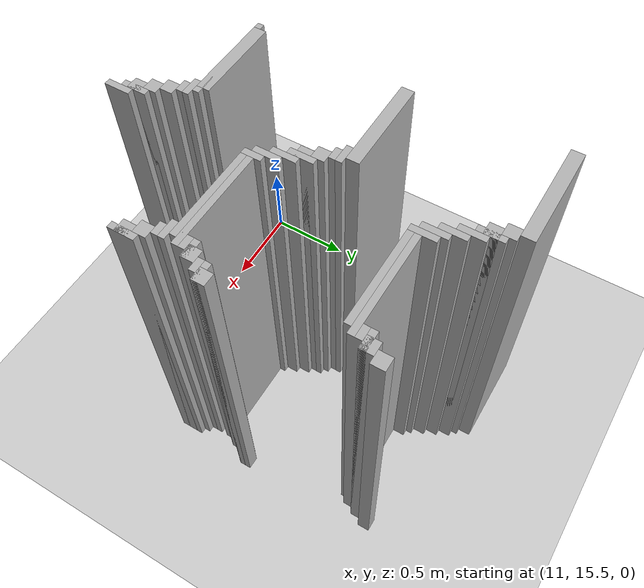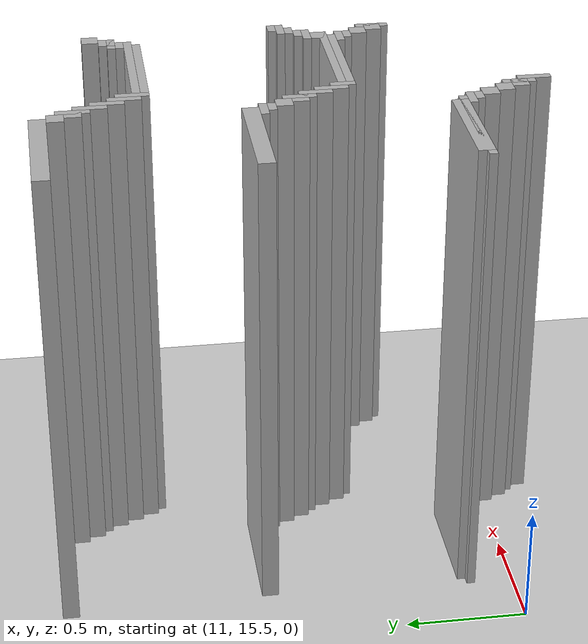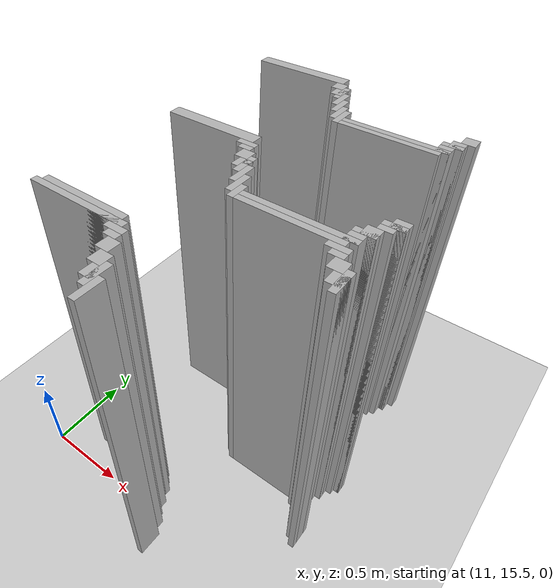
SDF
<sdf version="1.6">
 <world name="slam_world">
  <model name="ground_plane">
   <static>true</static>
   <link name="link">
    <collision name="collision">
     <geometry><plane><normal>0 0 1</normal><size>100 100</size></plane></geometry>
    </collision>
    <visual name="visual">
     <geometry><plane><normal>0 0 1</normal><size>100 100</size></plane></geometry>
     <material>
      <ambient>0.8 0.8 0.8 1</ambient>
      <diffuse>0.8 0.8 0.8 1</diffuse>
      <specular>0.8 0.8 0.8 1</specular>
     </material>
    </visual>
   </link>
  </model>
  <model name="wall_8">
   <static>true</static>
   <pose>11.519721577726218 17.366589327146173 1.0 0 0 0</pose>
   <link name="link">
    <collision name="collision">
     <geometry><box><size>0.5568445475638051 0.06960556844547564 2.0</size></box></geometry>
    </collision>
    <visual name="visual">
     <geometry><box><size>0.5568445475638051 0.06960556844547564 2.0</size></box></geometry>
     <material><ambient>0.5 0.5 0.5 1</ambient><diffuse>0.7 0.7 0.7 1</diffuse></material>
    </visual>
   </link>
  </model>
  <model name="wall_26">
   <static>true</static>
   <pose>11.79814385150812 17.296983758700694 1.0 0 0 0</pose>
   <link name="link">
    <collision name="collision">
     <geometry><box><size>0.06960556844547564 0.06960556844547564 2.0</size></box></geometry>
    </collision>
    <visual name="visual">
     <geometry><box><size>0.06960556844547564 0.06960556844547564 2.0</size></box></geometry>
     <material><ambient>0.5 0.5 0.5 1</ambient><diffuse>0.7 0.7 0.7 1</diffuse></material>
    </visual>
   </link>
  </model>
  <model name="wall_46">
   <static>true</static>
   <pose>11.850348027842227 17.22737819025522 1.0 0 0 0</pose>
   <link name="link">
    <collision name="collision">
     <geometry><box><size>0.03480278422273782 0.13921113689095127 2.0</size></box></geometry>
    </collision>
    <visual name="visual">
     <geometry><box><size>0.03480278422273782 0.13921113689095127 2.0</size></box></geometry>
     <material><ambient>0.5 0.5 0.5 1</ambient><diffuse>0.7 0.7 0.7 1</diffuse></material>
    </visual>
   </link>
  </model>
  <model name="wall_66">
   <static>true</static>
   <pose>11.832946635730858 17.22737819025522 1.0 0 0 0</pose>
   <link name="link">
    <collision name="collision">
     <geometry><box><size>0.06960556844547564 0.06960556844547564 2.0</size></box></geometry>
    </collision>
    <visual name="visual">
     <geometry><box><size>0.06960556844547564 0.06960556844547564 2.0</size></box></geometry>
     <material><ambient>0.5 0.5 0.5 1</ambient><diffuse>0.7 0.7 0.7 1</diffuse></material>
    </visual>
   </link>
  </model>
  <model name="wall_86">
   <static>true</static>
   <pose>11.885150812064964 17.157772621809745 1.0 0 0 0</pose>
   <link name="link">
    <collision name="collision">
     <geometry><box><size>0.03480278422273782 0.13921113689095127 2.0</size></box></geometry>
    </collision>
    <visual name="visual">
     <geometry><box><size>0.03480278422273782 0.13921113689095127 2.0</size></box></geometry>
     <material><ambient>0.5 0.5 0.5 1</ambient><diffuse>0.7 0.7 0.7 1</diffuse></material>
    </visual>
   </link>
  </model>
  <model name="wall_116">
   <static>true</static>
   <pose>11.919953596287703 17.08816705336427 1.0 0 0 0</pose>
   <link name="link">
    <collision name="collision">
     <geometry><box><size>0.03480278422273782 0.13921113689095127 2.0</size></box></geometry>
    </collision>
    <visual name="visual">
     <geometry><box><size>0.03480278422273782 0.13921113689095127 2.0</size></box></geometry>
     <material><ambient>0.5 0.5 0.5 1</ambient><diffuse>0.7 0.7 0.7 1</diffuse></material>
    </visual>
   </link>
  </model>
  <model name="wall_117">
   <static>true</static>
   <pose>12.59860788863109 17.122969837587007 1.0 0 0 0</pose>
   <link name="link">
    <collision name="collision">
     <geometry><box><size>0.06960556844547564 0.06960556844547564 2.0</size></box></geometry>
    </collision>
    <visual name="visual">
     <geometry><box><size>0.06960556844547564 0.06960556844547564 2.0</size></box></geometry>
     <material><ambient>0.5 0.5 0.5 1</ambient><diffuse>0.7 0.7 0.7 1</diffuse></material>
    </visual>
   </link>
  </model>
  <model name="wall_136">
   <static>true</static>
   <pose>11.95475638051044 17.01856148491879 1.0 0 0 0</pose>
   <link name="link">
    <collision name="collision">
     <geometry><box><size>0.03480278422273782 0.13921113689095127 2.0</size></box></geometry>
    </collision>
    <visual name="visual">
     <geometry><box><size>0.03480278422273782 0.13921113689095127 2.0</size></box></geometry>
     <material><ambient>0.5 0.5 0.5 1</ambient><diffuse>0.7 0.7 0.7 1</diffuse></material>
    </visual>
   </link>
  </model>
  <model name="wall_137">
   <static>true</static>
   <pose>12.563805104408353 17.053364269141532 1.0 0 0 0</pose>
   <link name="link">
    <collision name="collision">
     <geometry><box><size>0.06960556844547564 0.06960556844547564 2.0</size></box></geometry>
    </collision>
    <visual name="visual">
     <geometry><box><size>0.06960556844547564 0.06960556844547564 2.0</size></box></geometry>
     <material><ambient>0.5 0.5 0.5 1</ambient><diffuse>0.7 0.7 0.7 1</diffuse></material>
    </visual>
   </link>
  </model>
  <model name="wall_156">
   <static>true</static>
   <pose>11.989559164733178 16.983758700696054 1.0 0 0 0</pose>
   <link name="link">
    <collision name="collision">
     <geometry><box><size>0.03480278422273782 0.13921113689095127 2.0</size></box></geometry>
    </collision>
    <visual name="visual">
     <geometry><box><size>0.03480278422273782 0.13921113689095127 2.0</size></box></geometry>
     <material><ambient>0.5 0.5 0.5 1</ambient><diffuse>0.7 0.7 0.7 1</diffuse></material>
    </visual>
   </link>
  </model>
  <model name="wall_157">
   <static>true</static>
   <pose>12.546403712296984 17.035962877030162 1.0 0 0 0</pose>
   <link name="link">
    <collision name="collision">
     <geometry><box><size>0.10440835266821345 0.03480278422273782 2.0</size></box></geometry>
    </collision>
    <visual name="visual">
     <geometry><box><size>0.10440835266821345 0.03480278422273782 2.0</size></box></geometry>
     <material><ambient>0.5 0.5 0.5 1</ambient><diffuse>0.7 0.7 0.7 1</diffuse></material>
    </visual>
   </link>
  </model>
  <model name="wall_169">
   <static>true</static>
   <pose>12.529002320185615 16.983758700696054 1.0 0 0 0</pose>
   <link name="link">
    <collision name="collision">
     <geometry><box><size>0.06960556844547564 0.06960556844547564 2.0</size></box></geometry>
    </collision>
    <visual name="visual">
     <geometry><box><size>0.06960556844547564 0.06960556844547564 2.0</size></box></geometry>
     <material><ambient>0.5 0.5 0.5 1</ambient><diffuse>0.7 0.7 0.7 1</diffuse></material>
    </visual>
   </link>
  </model>
  <model name="wall_179">
   <static>true</static>
   <pose>12.28538283062645 16.966357308584687 1.0 0 0 0</pose>
   <link name="link">
    <collision name="collision">
     <geometry><box><size>0.5568445475638051 0.03480278422273782 2.0</size></box></geometry>
    </collision>
    <visual name="visual">
     <geometry><box><size>0.5568445475638051 0.03480278422273782 2.0</size></box></geometry>
     <material><ambient>0.5 0.5 0.5 1</ambient><diffuse>0.7 0.7 0.7 1</diffuse></material>
    </visual>
   </link>
  </model>
  <model name="wall_190">
   <static>true</static>
   <pose>12.267981438515081 16.93155452436195 1.0 0 0 0</pose>
   <link name="link">
    <collision name="collision">
     <geometry><box><size>0.5220417633410672 0.03480278422273782 2.0</size></box></geometry>
    </collision>
    <visual name="visual">
     <geometry><box><size>0.5220417633410672 0.03480278422273782 2.0</size></box></geometry>
     <material><ambient>0.5 0.5 0.5 1</ambient><diffuse>0.7 0.7 0.7 1</diffuse></material>
    </visual>
   </link>
  </model>
  <model name="wall_272">
   <static>true</static>
   <pose>11.537122969837586 16.531322505800464 1.0 0 0 0</pose>
   <link name="link">
    <collision name="collision">
     <geometry><box><size>0.5220417633410672 0.06960556844547564 2.0</size></box></geometry>
    </collision>
    <visual name="visual">
     <geometry><box><size>0.5220417633410672 0.06960556844547564 2.0</size></box></geometry>
     <material><ambient>0.5 0.5 0.5 1</ambient><diffuse>0.7 0.7 0.7 1</diffuse></material>
    </visual>
   </link>
  </model>
  <model name="wall_290">
   <static>true</static>
   <pose>11.780742459396752 16.479118329466356 1.0 0 0 0</pose>
   <link name="link">
    <collision name="collision">
     <geometry><box><size>0.10440835266821345 0.03480278422273782 2.0</size></box></geometry>
    </collision>
    <visual name="visual">
     <geometry><box><size>0.10440835266821345 0.03480278422273782 2.0</size></box></geometry>
     <material><ambient>0.5 0.5 0.5 1</ambient><diffuse>0.7 0.7 0.7 1</diffuse></material>
    </visual>
   </link>
  </model>
  <model name="wall_301">
   <static>true</static>
   <pose>11.79814385150812 16.44431554524362 1.0 0 0 0</pose>
   <link name="link">
    <collision name="collision">
     <geometry><box><size>0.06960556844547564 0.03480278422273782 2.0</size></box></geometry>
    </collision>
    <visual name="visual">
     <geometry><box><size>0.06960556844547564 0.03480278422273782 2.0</size></box></geometry>
     <material><ambient>0.5 0.5 0.5 1</ambient><diffuse>0.7 0.7 0.7 1</diffuse></material>
    </visual>
   </link>
  </model>
  <model name="wall_313">
   <static>true</static>
   <pose>11.832946635730858 16.39211136890951 1.0 0 0 0</pose>
   <link name="link">
    <collision name="collision">
     <geometry><box><size>0.06960556844547564 0.06960556844547564 2.0</size></box></geometry>
    </collision>
    <visual name="visual">
     <geometry><box><size>0.06960556844547564 0.06960556844547564 2.0</size></box></geometry>
     <material><ambient>0.5 0.5 0.5 1</ambient><diffuse>0.7 0.7 0.7 1</diffuse></material>
    </visual>
   </link>
  </model>
  <model name="wall_327">
   <static>true</static>
   <pose>11.885150812064964 16.322505800464036 1.0 0 0 0</pose>
   <link name="link">
    <collision name="collision">
     <geometry><box><size>0.03480278422273782 0.13921113689095127 2.0</size></box></geometry>
    </collision>
    <visual name="visual">
     <geometry><box><size>0.03480278422273782 0.13921113689095127 2.0</size></box></geometry>
     <material><ambient>0.5 0.5 0.5 1</ambient><diffuse>0.7 0.7 0.7 1</diffuse></material>
    </visual>
   </link>
  </model>
  <model name="wall_341">
   <static>true</static>
   <pose>11.867749419953595 16.322505800464036 1.0 0 0 0</pose>
   <link name="link">
    <collision name="collision">
     <geometry><box><size>0.06960556844547564 0.06960556844547564 2.0</size></box></geometry>
    </collision>
    <visual name="visual">
     <geometry><box><size>0.06960556844547564 0.06960556844547564 2.0</size></box></geometry>
     <material><ambient>0.5 0.5 0.5 1</ambient><diffuse>0.7 0.7 0.7 1</diffuse></material>
    </visual>
   </link>
  </model>
  <model name="wall_342">
   <static>true</static>
   <pose>12.633410672853827 16.322505800464036 1.0 0 0 0</pose>
   <link name="link">
    <collision name="collision">
     <geometry><box><size>0.06960556844547564 0.06960556844547564 2.0</size></box></geometry>
    </collision>
    <visual name="visual">
     <geometry><box><size>0.06960556844547564 0.06960556844547564 2.0</size></box></geometry>
     <material><ambient>0.5 0.5 0.5 1</ambient><diffuse>0.7 0.7 0.7 1</diffuse></material>
    </visual>
   </link>
  </model>
  <model name="wall_355">
   <static>true</static>
   <pose>11.919953596287703 16.25290023201856 1.0 0 0 0</pose>
   <link name="link">
    <collision name="collision">
     <geometry><box><size>0.03480278422273782 0.13921113689095127 2.0</size></box></geometry>
    </collision>
    <visual name="visual">
     <geometry><box><size>0.03480278422273782 0.13921113689095127 2.0</size></box></geometry>
     <material><ambient>0.5 0.5 0.5 1</ambient><diffuse>0.7 0.7 0.7 1</diffuse></material>
    </visual>
   </link>
  </model>
  <model name="wall_356">
   <static>true</static>
   <pose>12.616009280742459 16.30510440835267 1.0 0 0 0</pose>
   <link name="link">
    <collision name="collision">
     <geometry><box><size>0.10440835266821345 0.03480278422273782 2.0</size></box></geometry>
    </collision>
    <visual name="visual">
     <geometry><box><size>0.10440835266821345 0.03480278422273782 2.0</size></box></geometry>
     <material><ambient>0.5 0.5 0.5 1</ambient><diffuse>0.7 0.7 0.7 1</diffuse></material>
    </visual>
   </link>
  </model>
  <model name="wall_365">
   <static>true</static>
   <pose>12.59860788863109 16.270301624129928 1.0 0 0 0</pose>
   <link name="link">
    <collision name="collision">
     <geometry><box><size>0.06960556844547564 0.03480278422273782 2.0</size></box></geometry>
    </collision>
    <visual name="visual">
     <geometry><box><size>0.06960556844547564 0.03480278422273782 2.0</size></box></geometry>
     <material><ambient>0.5 0.5 0.5 1</ambient><diffuse>0.7 0.7 0.7 1</diffuse></material>
    </visual>
   </link>
  </model>
  <model name="wall_377">
   <static>true</static>
   <pose>11.95475638051044 16.183294663573086 1.0 0 0 0</pose>
   <link name="link">
    <collision name="collision">
     <geometry><box><size>0.03480278422273782 0.13921113689095127 2.0</size></box></geometry>
    </collision>
    <visual name="visual">
     <geometry><box><size>0.03480278422273782 0.13921113689095127 2.0</size></box></geometry>
     <material><ambient>0.5 0.5 0.5 1</ambient><diffuse>0.7 0.7 0.7 1</diffuse></material>
    </visual>
   </link>
  </model>
  <model name="wall_378">
   <static>true</static>
   <pose>12.563805104408353 16.218097447795824 1.0 0 0 0</pose>
   <link name="link">
    <collision name="collision">
     <geometry><box><size>0.06960556844547564 0.06960556844547564 2.0</size></box></geometry>
    </collision>
    <visual name="visual">
     <geometry><box><size>0.06960556844547564 0.06960556844547564 2.0</size></box></geometry>
     <material><ambient>0.5 0.5 0.5 1</ambient><diffuse>0.7 0.7 0.7 1</diffuse></material>
    </visual>
   </link>
  </model>
  <model name="wall_387">
   <static>true</static>
   <pose>12.546403712296984 16.200696055684453 1.0 0 0 0</pose>
   <link name="link">
    <collision name="collision">
     <geometry><box><size>0.10440835266821345 0.03480278422273782 2.0</size></box></geometry>
    </collision>
    <visual name="visual">
     <geometry><box><size>0.10440835266821345 0.03480278422273782 2.0</size></box></geometry>
     <material><ambient>0.5 0.5 0.5 1</ambient><diffuse>0.7 0.7 0.7 1</diffuse></material>
    </visual>
   </link>
  </model>
  <model name="wall_399">
   <static>true</static>
   <pose>11.989559164733178 16.13109048723898 1.0 0 0 0</pose>
   <link name="link">
    <collision name="collision">
     <geometry><box><size>0.03480278422273782 0.10440835266821345 2.0</size></box></geometry>
    </collision>
    <visual name="visual">
     <geometry><box><size>0.03480278422273782 0.10440835266821345 2.0</size></box></geometry>
     <material><ambient>0.5 0.5 0.5 1</ambient><diffuse>0.7 0.7 0.7 1</diffuse></material>
    </visual>
   </link>
  </model>
  <model name="wall_400">
   <static>true</static>
   <pose>12.529002320185615 16.14849187935035 1.0 0 0 0</pose>
   <link name="link">
    <collision name="collision">
     <geometry><box><size>0.06960556844547564 0.06960556844547564 2.0</size></box></geometry>
    </collision>
    <visual name="visual">
     <geometry><box><size>0.06960556844547564 0.06960556844547564 2.0</size></box></geometry>
     <material><ambient>0.5 0.5 0.5 1</ambient><diffuse>0.7 0.7 0.7 1</diffuse></material>
    </visual>
   </link>
  </model>
  <model name="wall_413">
   <static>true</static>
   <pose>12.28538283062645 16.13109048723898 1.0 0 0 0</pose>
   <link name="link">
    <collision name="collision">
     <geometry><box><size>0.5568445475638051 0.03480278422273782 2.0</size></box></geometry>
    </collision>
    <visual name="visual">
     <geometry><box><size>0.5568445475638051 0.03480278422273782 2.0</size></box></geometry>
     <material><ambient>0.5 0.5 0.5 1</ambient><diffuse>0.7 0.7 0.7 1</diffuse></material>
    </visual>
   </link>
  </model>
  <model name="wall_425">
   <static>true</static>
   <pose>12.267981438515081 16.09628770301624 1.0 0 0 0</pose>
   <link name="link">
    <collision name="collision">
     <geometry><box><size>0.5220417633410672 0.03480278422273782 2.0</size></box></geometry>
    </collision>
    <visual name="visual">
     <geometry><box><size>0.5220417633410672 0.03480278422273782 2.0</size></box></geometry>
     <material><ambient>0.5 0.5 0.5 1</ambient><diffuse>0.7 0.7 0.7 1</diffuse></material>
    </visual>
   </link>
  </model>
  <model name="wall_438">
   <static>true</static>
   <pose>12.511600928074245 16.061484918793504 1.0 0 0 0</pose>
   <link name="link">
    <collision name="collision">
     <geometry><box><size>0.10440835266821345 0.03480278422273782 2.0</size></box></geometry>
    </collision>
    <visual name="visual">
     <geometry><box><size>0.10440835266821345 0.03480278422273782 2.0</size></box></geometry>
     <material><ambient>0.5 0.5 0.5 1</ambient><diffuse>0.7 0.7 0.7 1</diffuse></material>
    </visual>
   </link>
  </model>
  <model name="wall_452">
   <static>true</static>
   <pose>12.529002320185615 16.026682134570766 1.0 0 0 0</pose>
   <link name="link">
    <collision name="collision">
     <geometry><box><size>0.06960556844547564 0.03480278422273782 2.0</size></box></geometry>
    </collision>
    <visual name="visual">
     <geometry><box><size>0.06960556844547564 0.03480278422273782 2.0</size></box></geometry>
     <material><ambient>0.5 0.5 0.5 1</ambient><diffuse>0.7 0.7 0.7 1</diffuse></material>
    </visual>
   </link>
  </model>
  <model name="wall_466">
   <static>true</static>
   <pose>12.563805104408353 15.974477958236658 1.0 0 0 0</pose>
   <link name="link">
    <collision name="collision">
     <geometry><box><size>0.06960556844547564 0.06960556844547564 2.0</size></box></geometry>
    </collision>
    <visual name="visual">
     <geometry><box><size>0.06960556844547564 0.06960556844547564 2.0</size></box></geometry>
     <material><ambient>0.5 0.5 0.5 1</ambient><diffuse>0.7 0.7 0.7 1</diffuse></material>
    </visual>
   </link>
  </model>
  <model name="wall_480">
   <static>true</static>
   <pose>12.616009280742459 15.904872389791183 1.0 0 0 0</pose>
   <link name="link">
    <collision name="collision">
     <geometry><box><size>0.03480278422273782 0.13921113689095127 2.0</size></box></geometry>
    </collision>
    <visual name="visual">
     <geometry><box><size>0.03480278422273782 0.13921113689095127 2.0</size></box></geometry>
     <material><ambient>0.5 0.5 0.5 1</ambient><diffuse>0.7 0.7 0.7 1</diffuse></material>
    </visual>
   </link>
  </model>
  <model name="wall_491">
   <static>true</static>
   <pose>12.59860788863109 15.904872389791183 1.0 0 0 0</pose>
   <link name="link">
    <collision name="collision">
     <geometry><box><size>0.06960556844547564 0.06960556844547564 2.0</size></box></geometry>
    </collision>
    <visual name="visual">
     <geometry><box><size>0.06960556844547564 0.06960556844547564 2.0</size></box></geometry>
     <material><ambient>0.5 0.5 0.5 1</ambient><diffuse>0.7 0.7 0.7 1</diffuse></material>
    </visual>
   </link>
  </model>
  <model name="wall_552">
   <static>true</static>
   <pose>11.519721577726218 15.696055684454755 1.0 0 0 0</pose>
   <link name="link">
    <collision name="collision">
     <geometry><box><size>0.4872389791183295 0.06960556844547564 2.0</size></box></geometry>
    </collision>
    <visual name="visual">
     <geometry><box><size>0.4872389791183295 0.06960556844547564 2.0</size></box></geometry>
     <material><ambient>0.5 0.5 0.5 1</ambient><diffuse>0.7 0.7 0.7 1</diffuse></material>
    </visual>
   </link>
  </model>
  <model name="wall_566">
   <static>true</static>
   <pose>11.519721577726218 15.678654292343387 1.0 0 0 0</pose>
   <link name="link">
    <collision name="collision">
     <geometry><box><size>0.5568445475638051 0.03480278422273782 2.0</size></box></geometry>
    </collision>
    <visual name="visual">
     <geometry><box><size>0.5568445475638051 0.03480278422273782 2.0</size></box></geometry>
     <material><ambient>0.5 0.5 0.5 1</ambient><diffuse>0.7 0.7 0.7 1</diffuse></material>
    </visual>
   </link>
  </model>
  <model name="wall_584">
   <static>true</static>
   <pose>11.780742459396752 15.64385150812065 1.0 0 0 0</pose>
   <link name="link">
    <collision name="collision">
     <geometry><box><size>0.10440835266821345 0.03480278422273782 2.0</size></box></geometry>
    </collision>
    <visual name="visual">
     <geometry><box><size>0.10440835266821345 0.03480278422273782 2.0</size></box></geometry>
     <material><ambient>0.5 0.5 0.5 1</ambient><diffuse>0.7 0.7 0.7 1</diffuse></material>
    </visual>
   </link>
  </model>
  <model name="wall_602">
   <static>true</static>
   <pose>11.79814385150812 15.609048723897912 1.0 0 0 0</pose>
   <link name="link">
    <collision name="collision">
     <geometry><box><size>0.06960556844547564 0.03480278422273782 2.0</size></box></geometry>
    </collision>
    <visual name="visual">
     <geometry><box><size>0.06960556844547564 0.03480278422273782 2.0</size></box></geometry>
     <material><ambient>0.5 0.5 0.5 1</ambient><diffuse>0.7 0.7 0.7 1</diffuse></material>
    </visual>
   </link>
  </model>
  <model name="wall_619">
   <static>true</static>
   <pose>11.832946635730858 15.556844547563804 1.0 0 0 0</pose>
   <link name="link">
    <collision name="collision">
     <geometry><box><size>0.06960556844547564 0.06960556844547564 2.0</size></box></geometry>
    </collision>
    <visual name="visual">
     <geometry><box><size>0.06960556844547564 0.06960556844547564 2.0</size></box></geometry>
     <material><ambient>0.5 0.5 0.5 1</ambient><diffuse>0.7 0.7 0.7 1</diffuse></material>
    </visual>
   </link>
  </model>
  <model name="wall_636">
   <static>true</static>
   <pose>11.867749419953595 15.48723897911833 1.0 0 0 0</pose>
   <link name="link">
    <collision name="collision">
     <geometry><box><size>0.06960556844547564 0.06960556844547564 2.0</size></box></geometry>
    </collision>
    <visual name="visual">
     <geometry><box><size>0.06960556844547564 0.06960556844547564 2.0</size></box></geometry>
     <material><ambient>0.5 0.5 0.5 1</ambient><diffuse>0.7 0.7 0.7 1</diffuse></material>
    </visual>
   </link>
  </model>
  <model name="wall_653">
   <static>true</static>
   <pose>11.919953596287703 15.417633410672853 1.0 0 0 0</pose>
   <link name="link">
    <collision name="collision">
     <geometry><box><size>0.03480278422273782 0.13921113689095127 2.0</size></box></geometry>
    </collision>
    <visual name="visual">
     <geometry><box><size>0.03480278422273782 0.13921113689095127 2.0</size></box></geometry>
     <material><ambient>0.5 0.5 0.5 1</ambient><diffuse>0.7 0.7 0.7 1</diffuse></material>
    </visual>
   </link>
  </model>
  <model name="wall_666">
   <static>true</static>
   <pose>11.902552204176333 15.417633410672853 1.0 0 0 0</pose>
   <link name="link">
    <collision name="collision">
     <geometry><box><size>0.06960556844547564 0.06960556844547564 2.0</size></box></geometry>
    </collision>
    <visual name="visual">
     <geometry><box><size>0.06960556844547564 0.06960556844547564 2.0</size></box></geometry>
     <material><ambient>0.5 0.5 0.5 1</ambient><diffuse>0.7 0.7 0.7 1</diffuse></material>
    </visual>
   </link>
  </model>
  <model name="wall_682">
   <static>true</static>
   <pose>11.95475638051044 15.348027842227378 1.0 0 0 0</pose>
   <link name="link">
    <collision name="collision">
     <geometry><box><size>0.03480278422273782 0.13921113689095127 2.0</size></box></geometry>
    </collision>
    <visual name="visual">
     <geometry><box><size>0.03480278422273782 0.13921113689095127 2.0</size></box></geometry>
     <material><ambient>0.5 0.5 0.5 1</ambient><diffuse>0.7 0.7 0.7 1</diffuse></material>
    </visual>
   </link>
  </model>
 </world>
</sdf>
